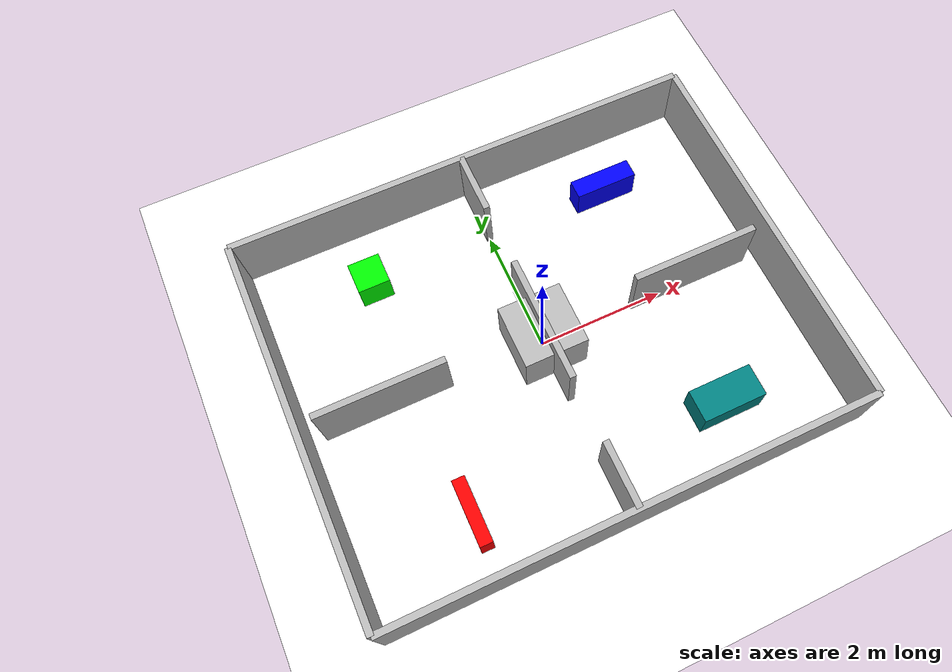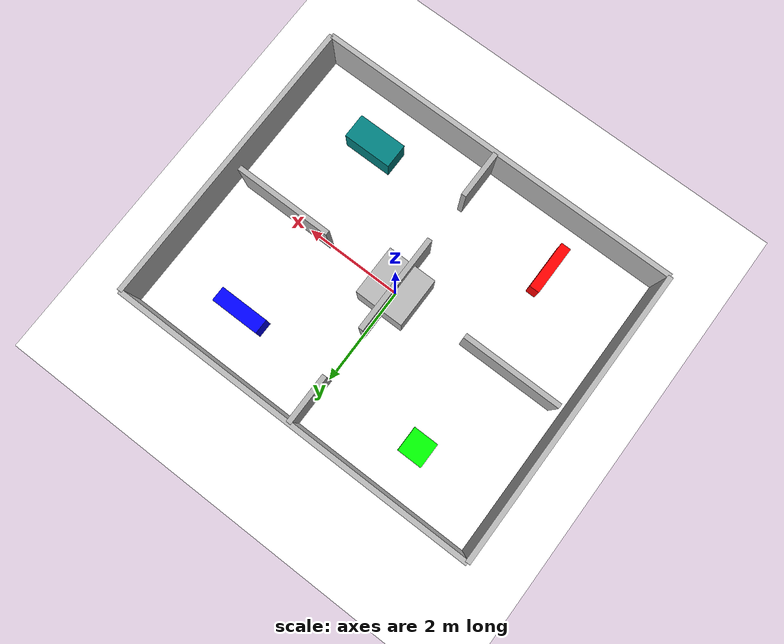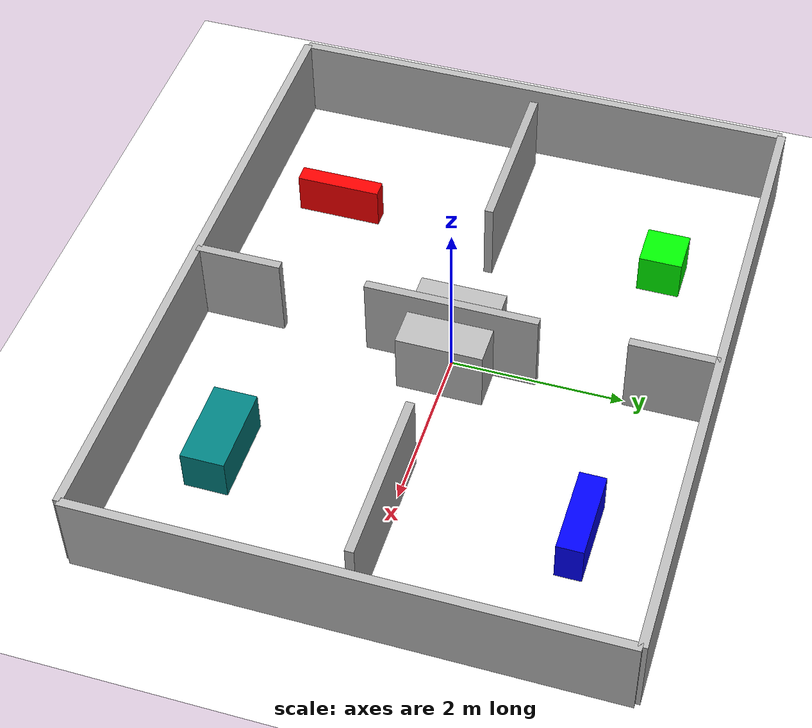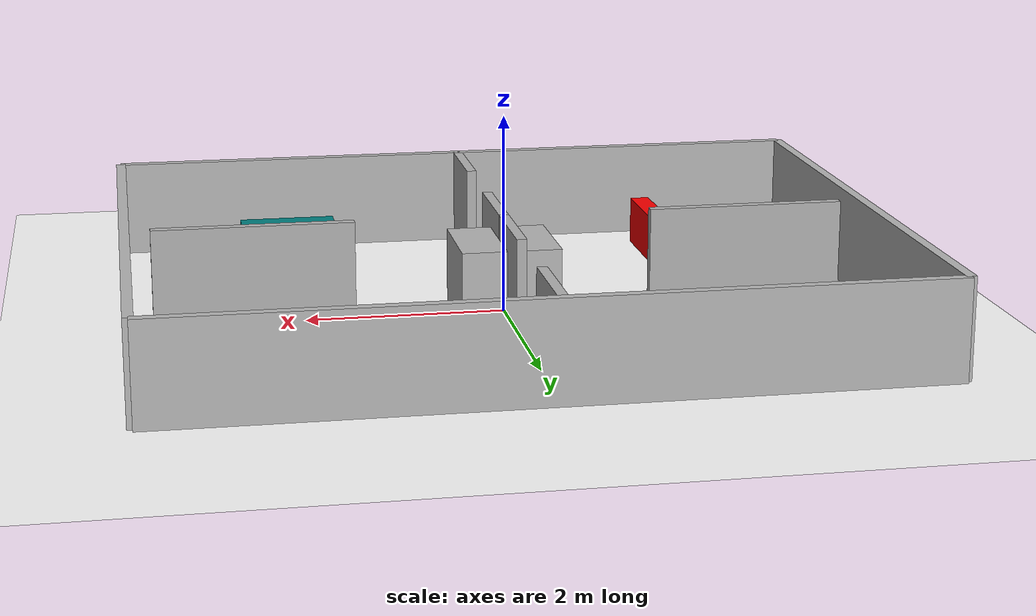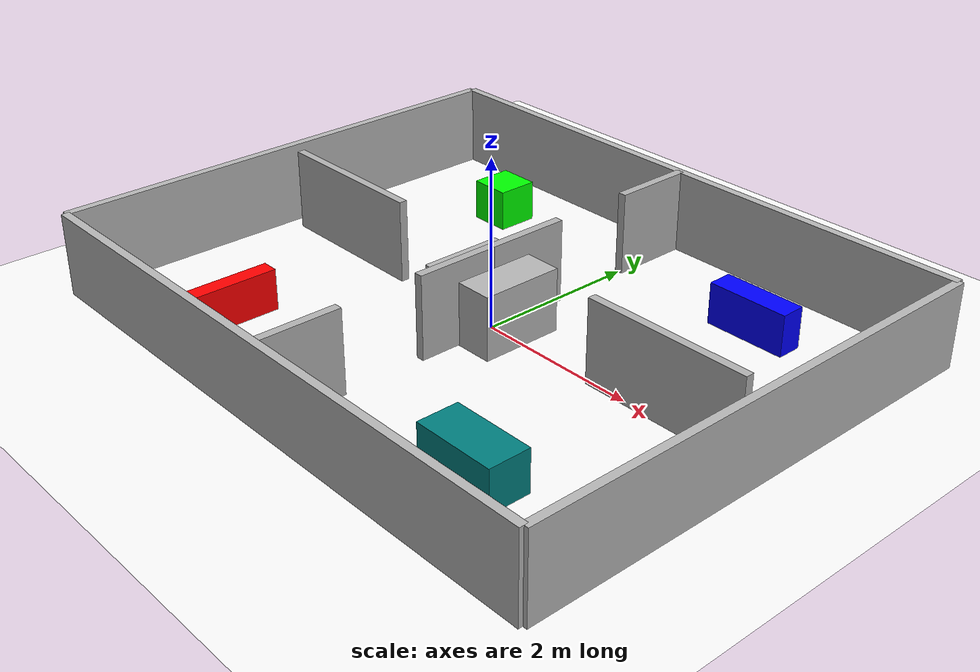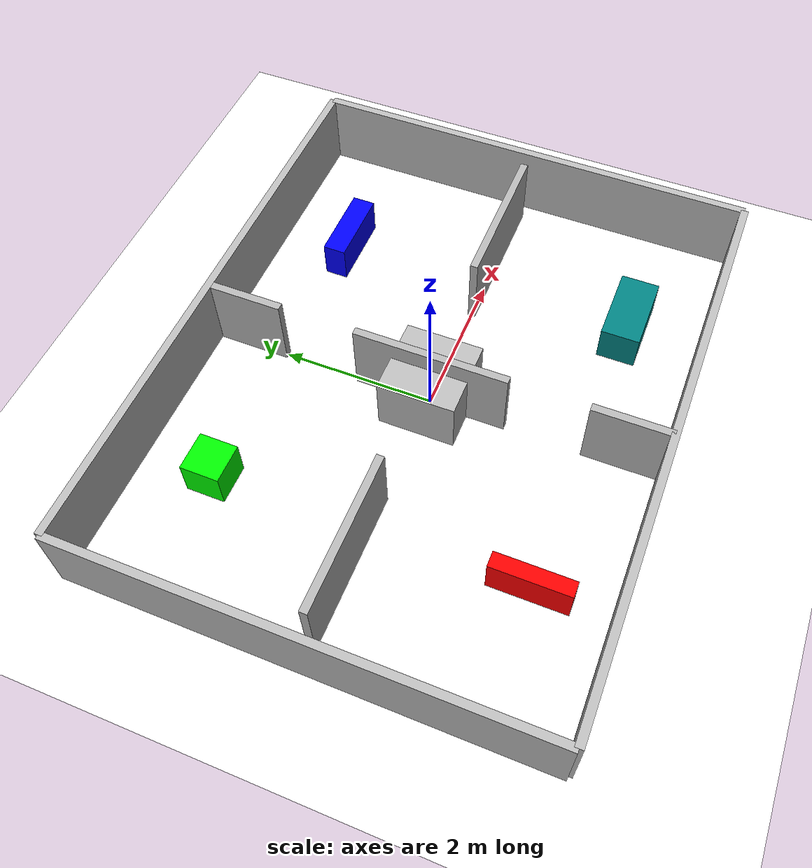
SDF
<sdf version="1.7">
  <world name="room">

    <physics name="default_physics" type="ode"/>

    <!-- Plugins needed for the simulation                     -->
    <!-- Gazebo uses system plugins to enable core features   -->

    <!-- Physics engine: enables dynamics simulation
        (gravity, collisions, wheel motion, forces) -->
    <plugin filename="gz-sim-physics-system"
            name="gz::sim::systems::Physics"/>

    <!-- User commands: allows external commands such as
        spawning or deleting entities from ROS or CLI -->
    <plugin filename="gz-sim-user-commands-system"
            name="gz::sim::systems::UserCommands"/>

    <!-- Scene broadcaster: sends simulation updates to
        the GUI so objects move correctly in the viewer -->
    <plugin filename="gz-sim-scene-broadcaster-system"
            name="gz::sim::systems::SceneBroadcaster"/>

    <!-- Sensors system: enables simulated sensors such as
        LiDAR, cameras, IMU, etc. Without this plugin
        sensors exist but do not produce data -->
    <plugin filename="gz-sim-sensors-system"
            name="gz::sim::systems::Sensors">

    <!-- Rendering engine used by sensors.
        "ogre2" is standard but WSL2 often works better with "ogre". -->
    <render_engine>ogre</render_engine>

    </plugin>

    <!-- Center box -->
    <model name="box">
      <pose>0 0 0.25 0 0 0</pose>
      <link name="link">
        <collision name="collision">
          <geometry>
            <box>
              <size>1 1 1</size>
            </box>
          </geometry>
        </collision>
        <visual name="visual">
          <geometry>
            <box>
              <size>1 1 1</size>
            </box>
          </geometry>
        </visual>
      </link>
    </model>

    <!-- Sun -->
    <include>
      <uri>https://fuel.gazebosim.org/1.0/OpenRobotics/models/Sun</uri>
    </include>

    <!-- White floor -->
    <model name="white_floor">
      <static>true</static>
      <pose>0 0 0 0 0 0</pose>

      <link name="floor_link">
        <collision name="collision">
          <geometry>
            <plane>
              <normal>0 0 1</normal>
              <size>10 10</size>
            </plane>
          </geometry>
        </collision>
        <visual name="visual">
          <geometry>
            <plane>
              <normal>0 0 1</normal>
              <size>10 10</size>
            </plane>
          </geometry>
          <material>
            <ambient>1 1 1 1</ambient>
            <diffuse>1 1 1 1</diffuse>
            <specular>0.1 0.1 0.1 1</specular>
          </material>
        </visual>
      </link>
    </model>

    <!-- Outer walls -->
    <model name="wall_north">
      <static>true</static>
      <pose>0 3 0.5 0 0 0</pose>
      <link name="link">
        <collision name="collision"><geometry><box><size>7.5 0.1 1</size></box></geometry></collision>
        <visual name="visual"><geometry><box><size>7.5 0.1 1</size></box></geometry></visual>
      </link>
    </model>

    <model name="wall_south">
      <static>true</static>
      <pose>0 -3 0.5 0 0 0</pose>
      <link name="link">
        <collision name="collision"><geometry><box><size>7.5 0.1 1</size></box></geometry></collision>
        <visual name="visual"><geometry><box><size>7.5 0.1 1</size></box></geometry></visual>
      </link>
    </model>

    <model name="wall_east">
      <static>true</static>
      <pose>3.75 0 0.5 0 0 0</pose>
      <link name="link">
        <collision name="collision"><geometry><box><size>0.1 6 1</size></box></geometry></collision>
        <visual name="visual"><geometry><box><size>0.1 6 1</size></box></geometry></visual>
      </link>
    </model>

    <model name="wall_west">
      <static>true</static>
      <pose>-3.75 0 0.5 0 0 0</pose>
      <link name="link">
        <collision name="collision"><geometry><box><size>0.1 6 1</size></box></geometry></collision>
        <visual name="visual"><geometry><box><size>0.1 6 1</size></box></geometry></visual>
      </link>
    </model>

    <!-- Mid horizontal walls -->
    <model name="mid_wall_left">
      <static>true</static>
      <pose>-2.5 0 0.5 0 0 0</pose>
      <link name="link">
        <collision name="collision">
          <geometry><box><size>2 0.1 1</size></box></geometry>
        </collision>
        <visual name="visual">
          <geometry><box><size>2 0.1 1</size></box></geometry>
          <material>
            <ambient>0.7 0.7 0.7 1</ambient>
            <diffuse>0.7 0.7 0.7 1</diffuse>
          </material>
        </visual>
      </link>
    </model>

    <model name="mid_wall_right">
      <static>true</static>
      <pose>2.5 0 0.5 0 0 0</pose>
      <link name="link">
        <collision name="collision"><geometry><box><size>2 0.1 1</size></box></geometry></collision>
        <visual name="visual"><geometry><box><size>2 0.1 1</size></box></geometry>
          <material>
            <ambient>0.7 0.7 0.7 1</ambient>
            <diffuse>0.7 0.7 0.7 1</diffuse>
          </material>
        </visual>
      </link>
    </model>

    <!-- Vertical segments -->
    <model name="mid_vertical_top">
      <static>true</static>
      <pose>0 2.5 0.5 0 0 0</pose>
      <link name="link">
        <collision name="collision"><geometry><box><size>0.1 1 1</size></box></geometry></collision>
        <visual name="visual"><geometry><box><size>0.1 1 1</size></box></geometry>
          <material>
            <ambient>0.7 0.7 0.7 1</ambient>
            <diffuse>0.7 0.7 0.7 1</diffuse>
          </material>
        </visual>
      </link>
    </model>

    <model name="mid_vertical_upper">
      <static>true</static>
      <pose>0 0.5 0.5 0 0 0</pose>
      <link name="link">
        <collision name="collision"><geometry><box><size>0.1 1 1</size></box></geometry></collision>
        <visual name="visual"><geometry><box><size>0.1 1 1</size></box></geometry>
          <material>
            <ambient>0.7 0.7 0.7 1</ambient>
            <diffuse>0.7 0.7 0.7 1</diffuse>
          </material>
        </visual>
      </link>
    </model>

    <model name="mid_vertical_lower">
      <static>true</static>
      <pose>0 -0.5 0.5 0 0 0</pose>
      <link name="link">
        <collision name="collision"><geometry><box><size>0.1 1 1</size></box></geometry></collision>
        <visual name="visual"><geometry><box><size>0.1 1 1</size></box></geometry>
          <material>
            <ambient>0.7 0.7 0.7 1</ambient>
            <diffuse>0.7 0.7 0.7 1</diffuse>
          </material>
        </visual>
      </link>
    </model>

    <model name="mid_vertical_bottom">
      <static>true</static>
      <pose>0 -2.5 0.5 0 0 0</pose>
      <link name="link">
        <collision name="collision"><geometry><box><size>0.1 1 1</size></box></geometry></collision>
        <visual name="visual"><geometry><box><size>0.1 1 1</size></box></geometry>
          <material>
            <ambient>0.7 0.7 0.7 1</ambient>
            <diffuse>0.7 0.7 0.7 1</diffuse>
          </material>
        </visual>
      </link>
    </model>

    <!-- Shelves -->
    <model name="shelf_1">
      <static>true</static>
      <pose>-2 2 0.25 0 0 0</pose>
      <link name="link">
        <collision name="collision"><geometry><box><size>0.5 0.5 0.5</size></box></geometry></collision>
        <visual name="visual"><geometry><box><size>0.5 0.5 0.5</size></box></geometry>
          <material>
            <ambient>0 1 0 1</ambient>
            <diffuse>0 1 0 1</diffuse>
          </material>
        </visual>
      </link>
    </model>

    <model name="shelf_2">
      <static>true</static>
      <pose>2 2 0.25 0 0 0</pose>
      <link name="link">
        <collision name="collision"><geometry><box><size>1 0.3 0.5</size></box></geometry></collision>
        <visual name="visual"><geometry><box><size>1 0.3 0.5</size></box></geometry>
          <material>
            <ambient>0 0 1 1</ambient>
            <diffuse>0 0 1 1</diffuse>
          </material>
        </visual>
      </link>
    </model>

    <model name="shelf_3">
      <static>true</static>
      <pose>-2 -2 0.25 0 0 0</pose>
      <link name="link">
        <collision name="collision"><geometry><box><size>0.2 1 0.5</size></box></geometry></collision>
        <visual name="visual"><geometry><box><size>0.2 1 0.5</size></box></geometry>
          <material>
            <ambient>1 0 0 1</ambient>
            <diffuse>1 0 0 1</diffuse>
          </material>
        </visual>
      </link>
    </model>

    <model name="shelf_4">
      <static>true</static>
      <pose>2 -2 0.25 0 0 0</pose>
      <link name="link">
        <collision name="collision"><geometry><box><size>1 0.5 0.5</size></box></geometry></collision>
        <visual name="visual">
          <geometry><box><size>1 0.5 0.5</size></box></geometry>
          <material>
            <ambient>0 0.5 0.5 1</ambient>
            <diffuse>0 0.5 0.5 1</diffuse>
          </material>
        </visual>
      </link>
    </model>

  </world>
</sdf>
